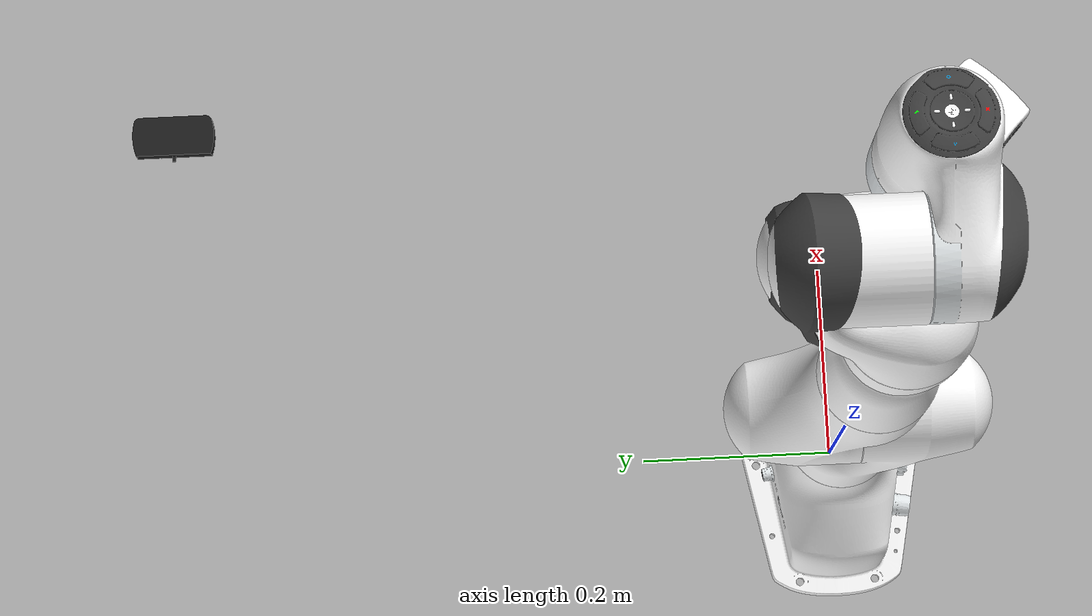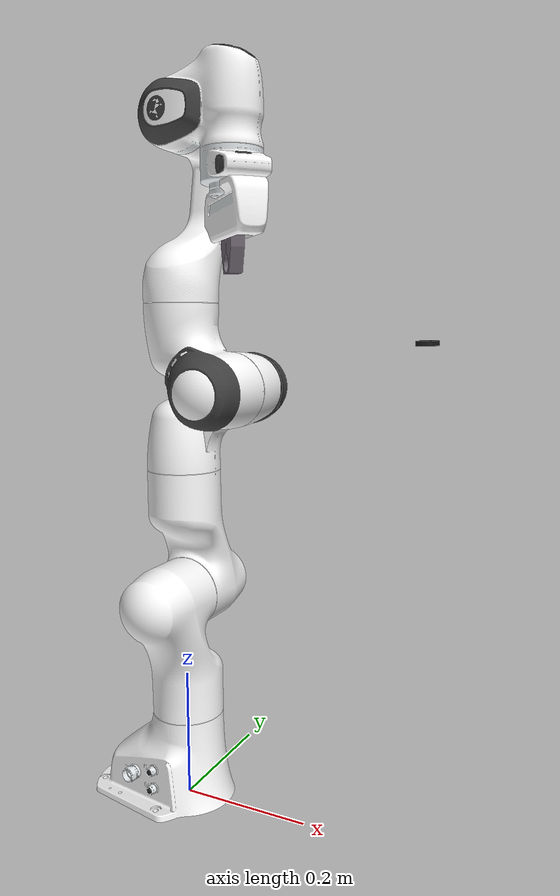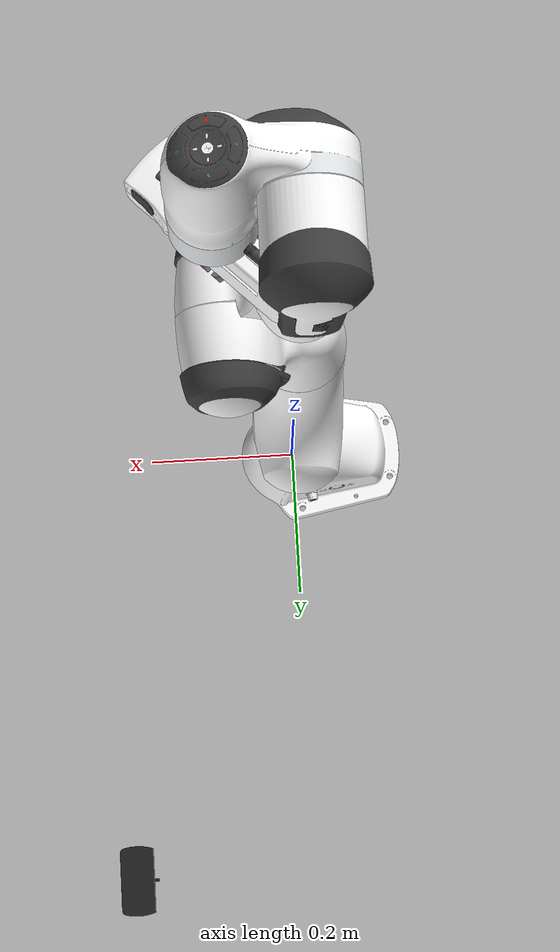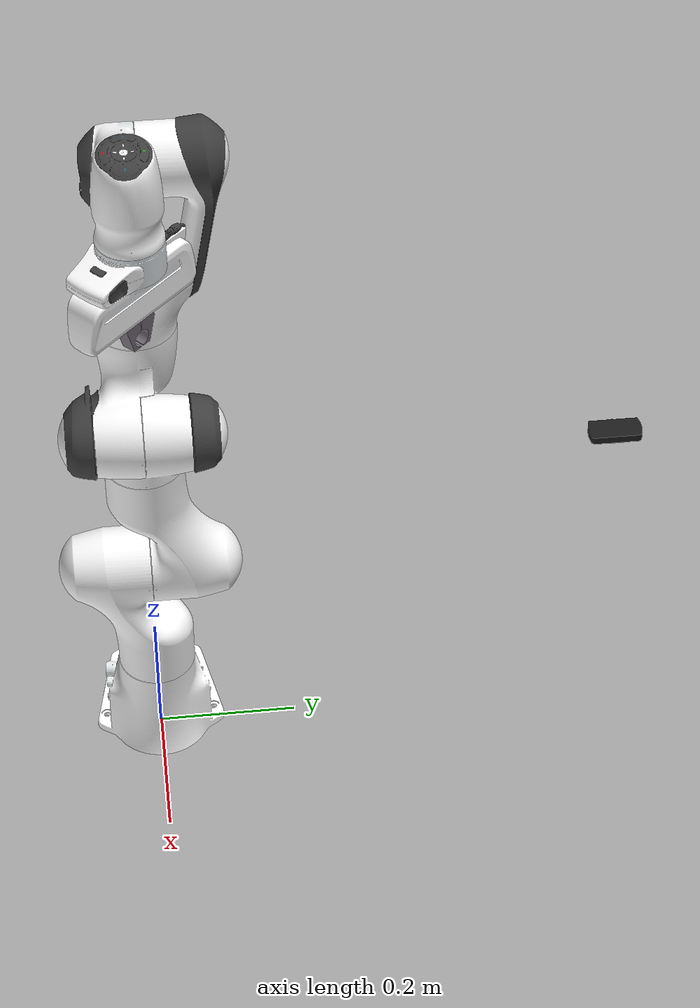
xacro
<?xml version="1.0"?>
<robot xmlns:xacro="http://www.ros.org/wiki/xacro" name="panda">
    <xacro:arg name="initial_positions_file" default="initial_positions.yaml" />
    <xacro:arg name="ros2_control_hardware_type" default="mock_components" />
    <xacro:property name="PI" value="3.14159274"/>

    <!-- Import panda urdf file -->
    <xacro:include filename="$(find robot_description)/urdf/panda.urdf" />
    <xacro:include filename="$(find robot_description)/urdf/camera/camera.xacro"/>

    <!-- Camera -->
    <xacro:camera_v0 parent="panda_link0">
	    <origin xyz="0.2 0.6 0.7" rpy="0 ${PI/2} 0"/>
    </xacro:camera_v0>
    <xacro:camera_gazebo_v0/>

    <!-- controllers for gazebo -->
    <xacro:include filename="panda.gazebo_ros2_control.xacro" />
    <xacro:panda_gazebo_ros2_control initial_positions_file="$(arg initial_positions_file)"/>

    <!-- There were no gazebo files in the original file-->
  <gazebo>
    <plugin
        filename="gz_ros2_control-system"
        name="gz_ros2_control::GazeboSimROS2ControlPlugin">
        <parameters>$(find panda_moveit_config)/config/ros2_controllers.yaml</parameters>
    </plugin>
    <plugin
        filename="gz-sim-joint-state-publisher-system"
        name="gz::sim::systems::JointStatePublisher">
    </plugin>
    <plugin
        filename="gz-sim-pose-publisher-system"
        name="gz::sim::systems::PosePublisher">
        <publish_link_pose>true</publish_link_pose>
        <use_pose_vector_msg>true</use_pose_vector_msg>
        <publish_nested_model_pose>true</publish_nested_model_pose>
    </plugin>

    <plugin filename="ignition-gazebo-sensors-system" name="ignition::gazebo::systems::Sensors">
      <render_engine>ogre2</render_engine>
    </plugin>
  </gazebo>
</robot>

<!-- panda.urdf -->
<robot name="panda" xmlns:xacro="http://www.ros.org/wiki/xacro">

    <link name="world"/>
    <joint name="connect_root_and_world" type="fixed">
      <child link="panda_link0" />
      <parent link="world" />
      <origin xyz="0 0 0" rpy="0 0 0" />
    </joint>

    <link name="panda_link0">
        <visual>
            <geometry>
                <mesh filename="package://robot_description/meshes/visual/link0.dae" />
            </geometry>
        </visual>
        <collision>
            <geometry>
                <mesh filename="package://robot_description/meshes/collision/link0.stl" />
            </geometry>
        </collision>
	    <inertial>
		  <origin xyz="0 0 0.32"/>
		  <mass value="50"/>
		  <inertia ixx="0.2" ixy="0" ixz="0" iyy="0.2" iyz="0" izz="0.4" />
	    </inertial>
    </link>
    <link name="panda_link1">
        <visual>
            <geometry>
                <mesh filename="package://robot_description/meshes/visual/link1.dae" />
            </geometry>
        </visual>
        <collision>
            <geometry>
                <mesh filename="package://robot_description/meshes/collision/link1.stl" />
            </geometry>
        </collision>
	    <inertial>
		  <origin xyz="0 0 0.32"/>
		  <mass value="0.5"/>
		  <inertia ixx="0.002" ixy="0" ixz="0" iyy="0.002" iyz="0" izz="0.002" />
	    </inertial>
    </link>
    <joint name="panda_joint1" type="revolute">
        <safety_controller k_position="100.0" k_velocity="40.0" soft_lower_limit="-2.8973" soft_upper_limit="2.8973" />
        <origin rpy="0 0 0" xyz="0 0 0.333" />
        <parent link="panda_link0" />
        <child link="panda_link1" />
        <axis xyz="0 0 1" />
        <limit effort="87" lower="-2.9671" upper="2.9671" velocity="2.3925" />
    </joint>
    <link name="panda_link2">
        <visual>
            <geometry>
                <mesh filename="package://robot_description/meshes/visual/link2.dae" />
            </geometry>
        </visual>
        <collision>
            <geometry>
                <mesh filename="package://robot_description/meshes/collision/link2.stl" />
            </geometry>
        </collision>
	    <inertial>
		  <origin xyz="0 0 0.32"/>
		  <mass value="0.5"/>
		  <inertia ixx="0.002" ixy="0" ixz="0" iyy="0.002" iyz="0" izz="0.002" />
	    </inertial>
    </link>
    <joint name="panda_joint2" type="revolute">
        <safety_controller k_position="100.0" k_velocity="40.0" soft_lower_limit="-1.7628" soft_upper_limit="1.7628" />
        <origin rpy="-1.57079632679 0 0" xyz="0 0 0" />
        <parent link="panda_link1" />
        <child link="panda_link2" />
        <axis xyz="0 0 1" />
        <limit effort="87" lower="-1.8326" upper="1.8326" velocity="2.3925" />
    </joint>
    <link name="panda_link3">
        <visual>
            <geometry>
                <mesh filename="package://robot_description/meshes/visual/link3.dae" />
            </geometry>
        </visual>
        <collision>
            <geometry>
                <mesh filename="package://robot_description/meshes/collision/link3.stl" />
            </geometry>
        </collision>
	    <inertial>
		  <origin xyz="0 0 0.32"/>
		  <mass value="0.5"/>
		  <inertia ixx="0.002" ixy="0" ixz="0" iyy="0.002" iyz="0" izz="0.002" />
	    </inertial>
    </link>
    <joint name="panda_joint3" type="revolute">
        <safety_controller k_position="100.0" k_velocity="40.0" soft_lower_limit="-2.8973" soft_upper_limit="2.8973" />
        <origin rpy="1.57079632679 0 0" xyz="0 -0.316 0" />
        <parent link="panda_link2" />
        <child link="panda_link3" />
        <axis xyz="0 0 1" />
        <limit effort="87" lower="-2.9671" upper="2.9671" velocity="2.3925" />
    </joint>
    <link name="panda_link4">
        <visual>
            <geometry>
                <mesh filename="package://robot_description/meshes/visual/link4.dae" />
            </geometry>
        </visual>
        <collision>
            <geometry>
                <mesh filename="package://robot_description/meshes/collision/link4.stl" />
            </geometry>
        </collision>
	    <inertial>
		  <origin xyz="0 0 0.32"/>
		  <mass value="0.5"/>
		  <inertia ixx="0.002" ixy="0" ixz="0" iyy="0.002" iyz="0" izz="0.002" />
	    </inertial>
    </link>
    <joint name="panda_joint4" type="revolute">
        <safety_controller k_position="100.0" k_velocity="40.0" soft_lower_limit="-3.0718" soft_upper_limit="0.0175" />
        <origin rpy="1.57079632679 0 0" xyz="0.0825 0 0" />
        <parent link="panda_link3" />
        <child link="panda_link4" />
        <axis xyz="0 0 1" />
        <limit effort="87" lower="-3.1416" upper="0.0873" velocity="2.3925" />
    </joint>
    <link name="panda_link5">
        <visual>
            <geometry>
                <mesh filename="package://robot_description/meshes/visual/link5.dae" />
            </geometry>
        </visual>
        <collision>
            <geometry>
                <mesh filename="package://robot_description/meshes/collision/link5.stl" />
            </geometry>
        </collision>
	    <inertial>
		  <origin xyz="0 0 0.32"/>
		  <mass value="0.5"/>
		  <inertia ixx="0.002" ixy="0" ixz="0" iyy="0.002" iyz="0" izz="0.002" />
	    </inertial>
    </link>
    <joint name="panda_joint5" type="revolute">
        <safety_controller k_position="100.0" k_velocity="40.0" soft_lower_limit="-2.8973" soft_upper_limit="2.8973" />
        <origin rpy="-1.57079632679 0 0" xyz="-0.0825 0.384 0" />
        <parent link="panda_link4" />
        <child link="panda_link5" />
        <axis xyz="0 0 1" />
        <limit effort="12" lower="-2.9671" upper="2.9671" velocity="2.8710" />
    </joint>
    <link name="panda_link6">
        <visual>
            <geometry>
                <mesh filename="package://robot_description/meshes/visual/link6.dae" />
            </geometry>
        </visual>
        <collision>
            <geometry>
                <mesh filename="package://robot_description/meshes/collision/link6.stl" />
            </geometry>
        </collision>
	    <inertial>
		  <origin xyz="0 0 0.32"/>
		  <mass value="0.5"/>
		  <inertia ixx="0.002" ixy="0" ixz="0" iyy="0.002" iyz="0" izz="0.002" />
	    </inertial>
    </link>
    <joint name="panda_joint6" type="revolute">
        <safety_controller k_position="100.0" k_velocity="40.0" soft_lower_limit="-0.0175" soft_upper_limit="3.7525" />
        <origin rpy="1.57079632679 0 0" xyz="0 0 0" />
        <parent link="panda_link5" />
        <child link="panda_link6" />
        <axis xyz="0 0 1" />
        <limit effort="12" lower="-0.0873" upper="3.8223" velocity="2.8710" />
    </joint>
    <link name="panda_link7">
        <visual>
            <geometry>
                <mesh filename="package://robot_description/meshes/visual/link7.dae" />
            </geometry>
        </visual>
        <collision>
            <geometry>
                <mesh filename="package://robot_description/meshes/collision/link7.stl" />
            </geometry>
        </collision>
	    <inertial>
		  <origin xyz="0 0 0.32"/>
		  <mass value="0.5"/>
		  <inertia ixx="0.002" ixy="0" ixz="0" iyy="0.002" iyz="0" izz="0.002" />
	    </inertial>
    </link>
    <joint name="panda_joint7" type="revolute">
        <safety_controller k_position="100.0" k_velocity="40.0" soft_lower_limit="-2.8973" soft_upper_limit="2.8973" />
        <origin rpy="1.57079632679 0 0" xyz="0.088 0 0" />
        <parent link="panda_link6" />
        <child link="panda_link7" />
        <axis xyz="0 0 1" />
        <limit effort="12" lower="-2.9671" upper="2.9671" velocity="2.8710" />
    </joint>
    <link name="panda_link8" />
    <joint name="panda_joint8" type="fixed">
        <origin rpy="0 0 0" xyz="0 0 0.107" />
        <parent link="panda_link7" />
        <child link="panda_link8" />
        <axis xyz="0 0 0" />
    </joint>
    <joint name="panda_hand_joint" type="fixed">
        <parent link="panda_link8" />
        <child link="panda_hand" />
        <origin rpy="0 0 -0.785398163397" xyz="0 0 0" />
    </joint>
    <link name="panda_hand">
        <visual>
            <geometry>
                <mesh filename="package://robot_description/meshes/visual/hand.dae" />
            </geometry>
        </visual>
        <collision>
            <geometry>
                <mesh filename="package://robot_description/meshes/collision/hand.stl" />
            </geometry>
        </collision>
	    <inertial>
		  <origin xyz="0 0 0.32"/>
		  <mass value="0.5"/>
		  <inertia ixx="0.002" ixy="0" ixz="0" iyy="0.002" iyz="0" izz="0.002" />
	    </inertial>
    </link>
    <link name="panda_leftfinger">
        <visual>
            <geometry>
                <mesh filename="package://robot_description/meshes/visual/finger.dae" />
            </geometry>
        </visual>
        <collision>
            <geometry>
                <mesh filename="package://robot_description/meshes/collision/finger.stl" />
            </geometry>
        </collision>
	    <inertial>
		  <origin xyz="0 0 0.32"/>
		  <mass value="0.5"/>
		  <inertia ixx="0.002" ixy="0" ixz="0" iyy="0.002" iyz="0" izz="0.002" />
	    </inertial>
    </link>
    <link name="panda_rightfinger">
        <visual>
            <origin rpy="0 0 3.14159265359" xyz="0 0 0" />
            <geometry>
                <mesh filename="package://robot_description/meshes/visual/finger.dae" />
            </geometry>
        </visual>
        <collision>
            <origin rpy="0 0 3.14159265359" xyz="0 0 0" />
            <geometry>
                <mesh filename="package://robot_description/meshes/collision/finger.stl" />
            </geometry>
        </collision>
	    <inertial>
		  <origin xyz="0 0 0.32"/>
		  <mass value="0.5"/>
		  <inertia ixx="0.002" ixy="0" ixz="0" iyy="0.002" iyz="0" izz="0.002" />
	    </inertial>
    </link>
    <joint name="panda_finger_joint1" type="prismatic">
        <parent link="panda_hand" />
        <child link="panda_leftfinger" />
        <origin rpy="0.0 0.0 0.0" xyz="0.0 0.0 0.0584" />
        <axis xyz="0 1 0" />
        <limit effort="40.0" lower="0.0" upper="0.04" velocity="100.0" />
    </joint>
    <joint name="panda_finger_joint2" type="prismatic">
        <parent link="panda_hand" />
        <child link="panda_rightfinger" />
        <origin rpy="0.0 0.0 0.0" xyz="0.0 0.0 0.0584" />
        <axis xyz="0 -1 0" />
        <limit effort="40.0" lower="0.0" upper="0.04" velocity="100.0" />
        <mimic joint="panda_finger_joint1" />
    </joint>

    <!-- https://github.com/ros-controls/gazebo_ros2_control/issues/173#issuecomment-1536332488 -->
    <joint name="panda_finger_joint2_mimic" type="fixed">
        <parent link="panda_hand" />
        <child link="random" />
    </joint>
    <link name="random"/>
</robot>

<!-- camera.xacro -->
<robot name="delirobo" xmlns:xacro="http://ros.org/wiki/xacro">

  <xacro:include filename="$(find robot_description)/urdf/camera/camera.gazebo"/>

  <xacro:macro name="camera_v0" params="parent *joint_origin">
	<joint name="camera_joint" type="fixed">
	  <xacro:insert_block name="joint_origin"/>
	  <parent link="${parent}"/>
	  <child link="camera_link"/>
	</joint>

	<link name="camera_link">
	  <visual>
		<geometry>
		  <mesh filename="package://robot_description/meshes/visual/camera.dae"/>
		</geometry>
	  </visual>
	  <collision>
		<geometry>
		  <mesh filename="package://robot_description/meshes/collision/camera.stl"/>
		</geometry>
	  </collision>
	  <inertial>
		<origin xyz="0 0 0"/>
		<mass value="0.1"/>
		<inertia ixx="0.00001" ixy="0" ixz="0" iyy="0.00001" iyz="0" izz="0.00001" />
	  </inertial>
	</link>
  </xacro:macro>

</robot>
